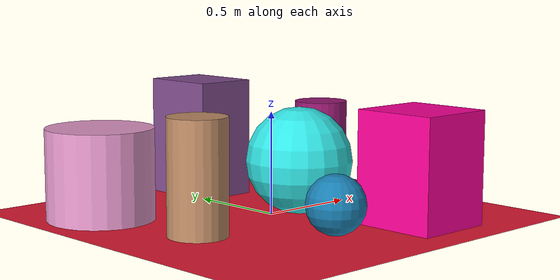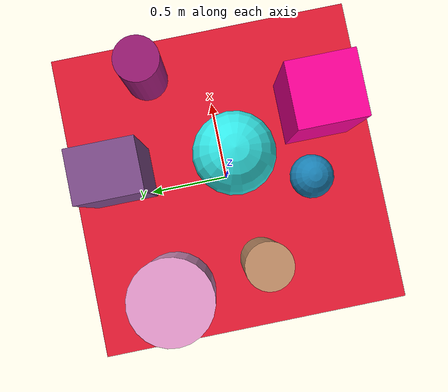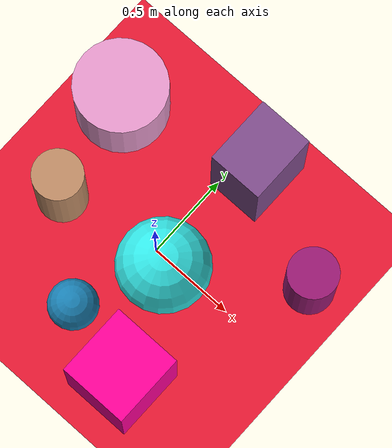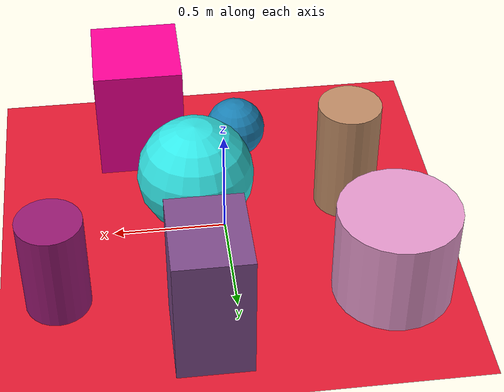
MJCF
<mujoco>
   <asset>
<texture type="skybox" builtin="gradient" rgb1="0.3 0.6 0.4" rgb2="0.7 0.6 0.0" width="256" height="256"/>
<texture name="flat_0" builtin="flat" rgb1="0.1 0.5 0.7" rgb2="0.1 0.5 0.7"  width="200" height="200"/>
<texture name="flat_1" builtin="flat" rgb1="0.9 0.6 0.8" rgb2="0.9 0.6 0.8"  width="200" height="200"/>
<texture name="flat_2" builtin="flat" rgb1="0.2 0.9 0.9" rgb2="0.2 0.9 0.9"  width="200" height="200"/>
<texture name="gradient_3" builtin="gradient" rgb1="0.5 0.1 0.7" rgb2="0.5 0.5 0.4" width="200" height="200"/>
<texture name="checker_4" builtin="checker" type="2d" rgb1="0.8 0.2 0.3" rgb2="0.4 0.0 0.6" width="200" height="200"/>
<texture name="flat_5" builtin="flat" rgb1="1.0 0.0 0.6" rgb2="1.0 0.0 0.6"  width="200" height="200"/>
<texture name="checker_6" builtin="checker" type="2d" rgb1="0.6 0.2 0.3" rgb2="0.9 0.9 0.5" width="200" height="200"/><material name="flat_0_mat" reflectance="0" texture="flat_0" texuniform="true"/>
<material name="flat_1_mat" reflectance="0" texture="flat_1" texuniform="true"/>
<material name="flat_2_mat" reflectance="0" texture="flat_2" texuniform="true"/>
<material name="gradient_3_mat" reflectance="0" texture="gradient_3" texuniform="true"/>
<material name="checker_4_mat" reflectance="0" texrepeat="7 7" texture="checker_4" texuniform="false" />
<material name="flat_5_mat" reflectance="0" texture="flat_5" texuniform="true"/>
<material name="checker_6_mat" reflectance="0" texrepeat="4 4" texture="checker_6" texuniform="false" />
   </asset>

   <worldbody>
      <light diffuse=".9 .9 .9" pos="0 0 3" dir="0 0 -1"/>
     <geom type="plane" size="1 1 0.1" rgba="0.9 0.1 0.2 1"/>
<geom type="sphere" pos="-0.11 -0.53 0.14" size="0.14 0.14 0.14" material="flat_0_mat" />
<geom type="cylinder" pos="-0.67 0.47 0.22" size="0.26 0.22 0.22" material="flat_1_mat" />
<geom type="sphere" pos="0.12 -0.07 0.26" size="0.26 0.26 0.26" material="flat_2_mat" />
<geom type="box" pos="0.13 0.67 0.3" size="0.16 0.2 0.3" material="gradient_3_mat" />
<geom type="cylinder" pos="0.75 0.39 0.23" size="0.14 0.23 0.23" material="checker_4_mat" />
<geom type="box" pos="0.34 -0.64 0.27" size="0.2 0.21 0.27" material="flat_5_mat" />
<geom type="cylinder" pos="-0.57 -0.12 0.27" size="0.14 0.27 0.27" material="checker_6_mat" /><camera euler="60 0 180" fovy="60" name="camera_a" pos="0 -1.5 1"></camera>   </worldbody>
</mujoco>
